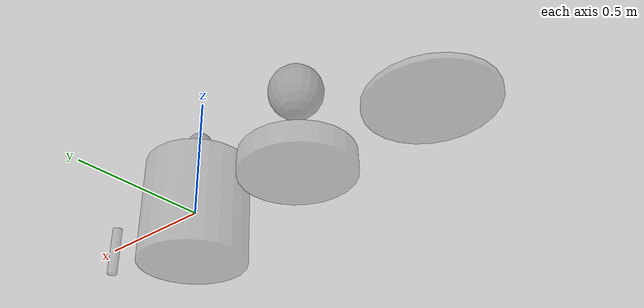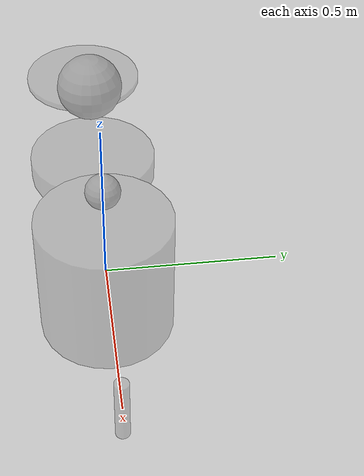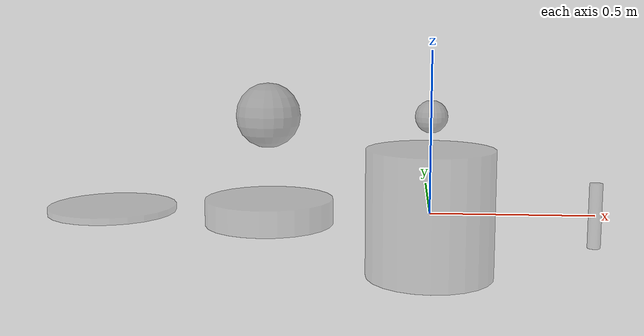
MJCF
<mujoco>
  <statistic meansize="0.15"/>

  <visual>
    <map force="0.02"/>
    <scale contactheight=".05" contactwidth=".2"/>
    <headlight ambient=".4 .4 .4"/>
  </visual>

  <option>
    <flag gravity="disable"/>
  </option>

  <worldbody>
    <light pos="0 0 1"/>

    <body pos="0 0 .3">
      <freejoint/>
      <geom type="sphere" size=".05" rgba=".5 .5 .5 .5" gap="0.1"/>
    </body>

    <body pos="-.5 0 .3">
      <freejoint/>
      <geom type="sphere" size=".1" rgba=".5 .5 .5 .5"/>
    </body>

    <body mocap="true"  pos="-1 0 0">
      <geom type="cylinder" size=".2 .01" rgba=".5 .5 .5 .3" margin=".04"/>
    </body>

    <body mocap="true"  pos="-.5 0 0">
      <geom type="cylinder" size=".2 .04" rgba=".5 .5 .5 .3"/>
    </body>

    <body mocap="true">
      <geom type="cylinder" size=".2 .2" rgba=".5 .5 .5 .3"/>
    </body>

    <body mocap="true" pos=".5 0 0">
      <geom type="cylinder" size=".02 .1" rgba=".5 .5 .5 .3"/>
    </body>

  </worldbody>
</mujoco>
